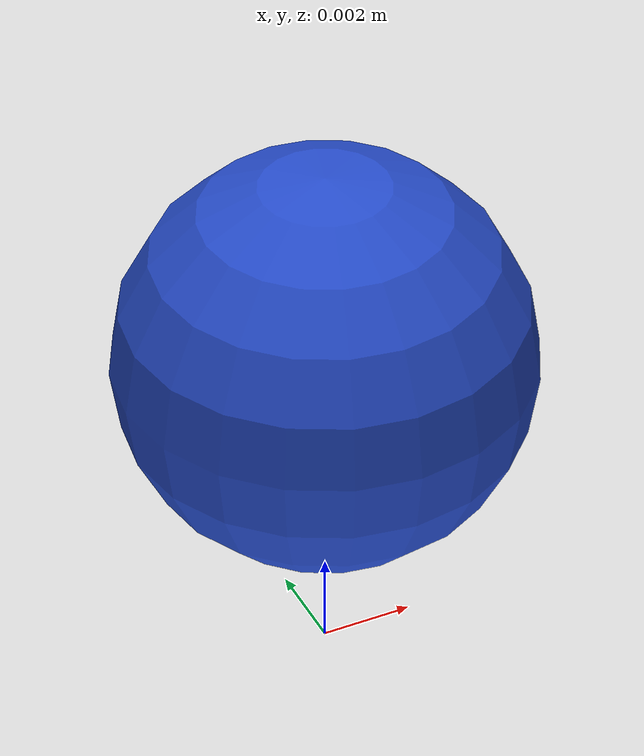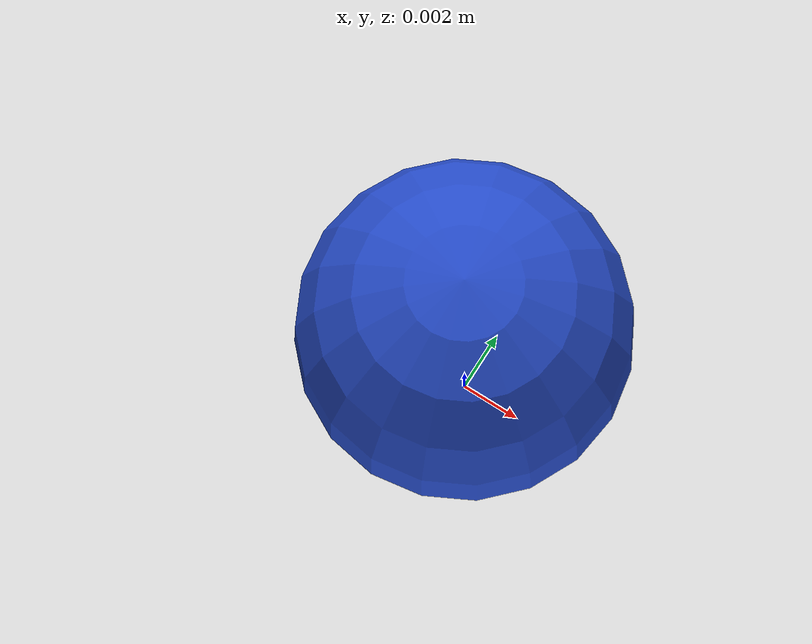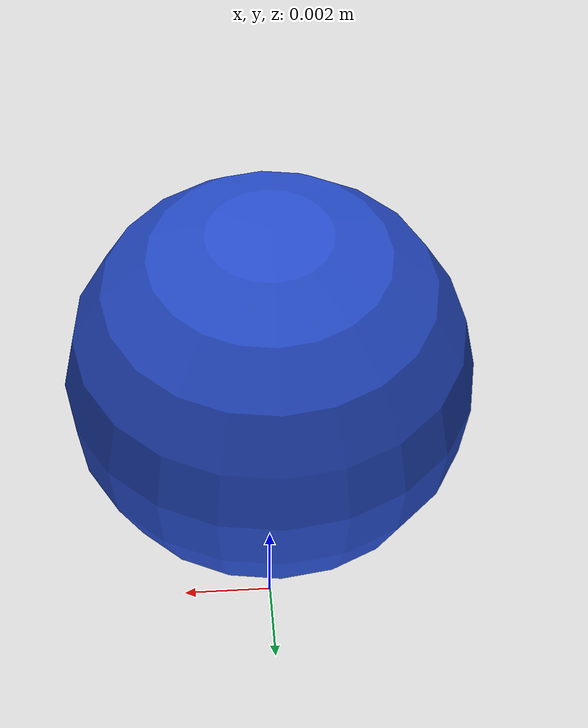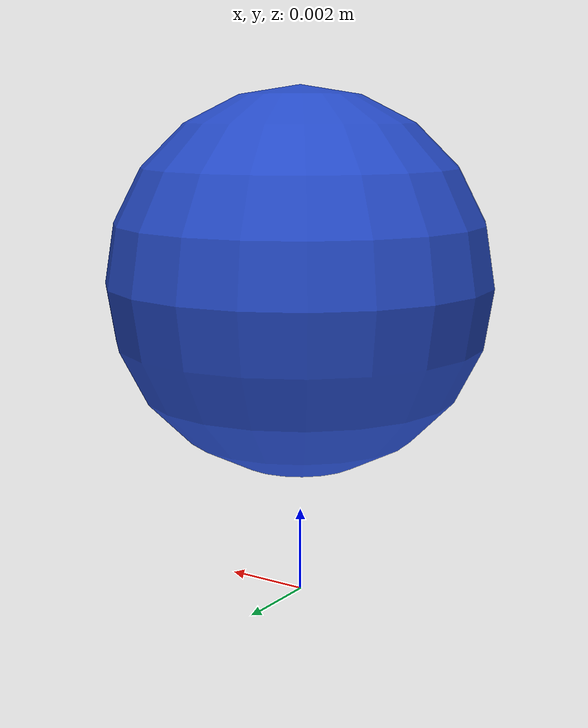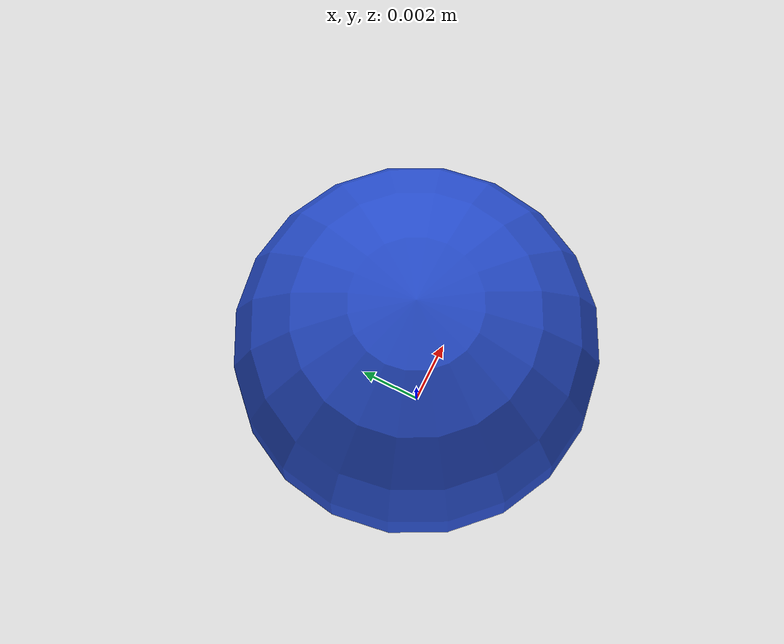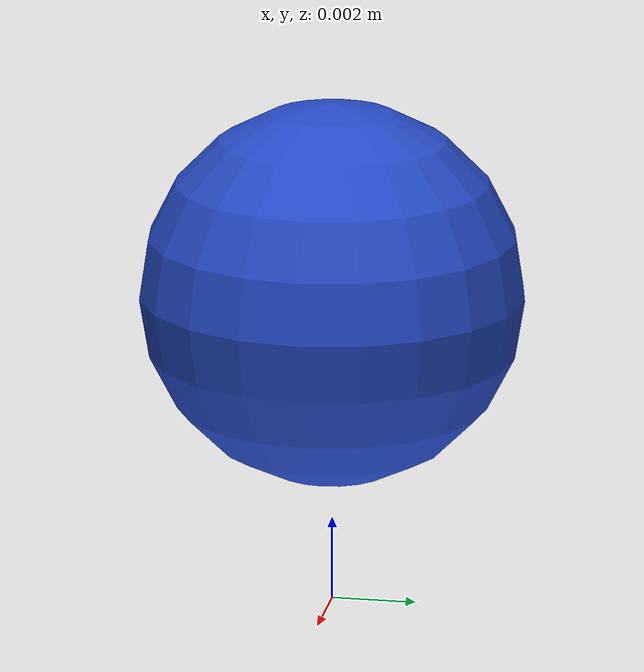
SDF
<?xml version="1.0" ?>
<sdf version="1.5">
  <model name="marble_Blue">
    <link name="marble_01">
      <pose>0 0 0.0075 0 0 0</pose>
      <inertial>
        <mass>0.0062</mass>
        <inertia>
          <ixx>1.395e-07</ixx>
          <ixy>0</ixy>
          <ixz>0</ixz>
          <iyy>1.395e-07</iyy>
          <iyz>0</iyz>
          <izz>1.395e-07</izz>
        </inertia>
      </inertial>

      <collision name="collision">
        <geometry>
          <sphere>
            <radius>0.0045</radius>
          </sphere>
        </geometry>
        <surface>
          <contact>
            <!-- glass -->
            <poissons_ratio>0.22</poissons_ratio>
            <elastic_modulus>5.1e+10</elastic_modulus>
            <ode>
              <kp>100000</kp>
              <kd>100</kd>
              <max_vel>100.0</max_vel>
              <min_depth>0.001</min_depth>
            </ode>
          </contact>
          <friction>
            <torsional>
              <coefficient>1.0</coefficient>
              <use_patch_radius>0</use_patch_radius>
              <surface_radius>0.01</surface_radius>
            </torsional>
          </friction>
        </surface>
      </collision>

      <visual name="visual">
        <geometry>
          <sphere>
            <radius>0.0045</radius>
          </sphere>
        </geometry>
        <material>
          <script>
            <uri>file://media/materials/scripts/gazebo.material</uri>
            <name>Gazebo/Blue</name>
          </script>
        </material>
      </visual>

      <!-- approximate rolling friction -->
      <velocity_decay>
        <linear>0.00</linear>
        <angular>0.005</angular>
      </velocity_decay>
    </link>
  </model>
</sdf>
